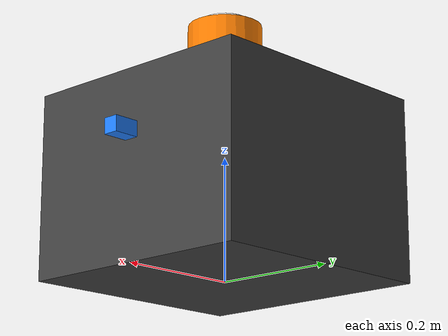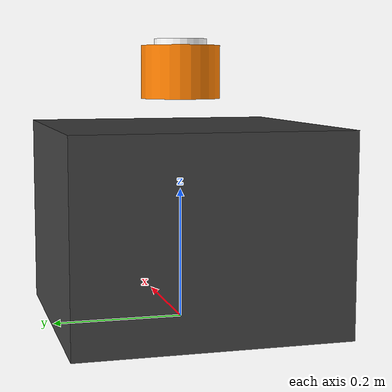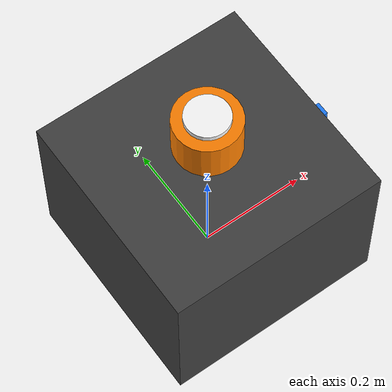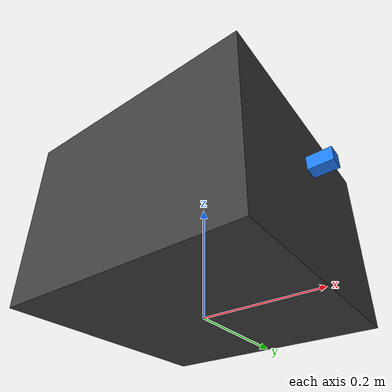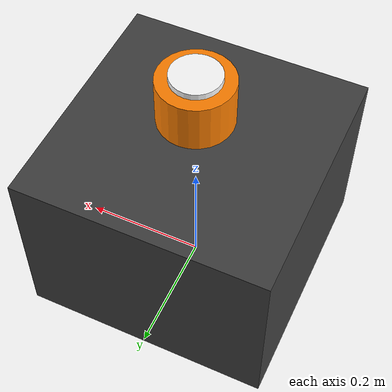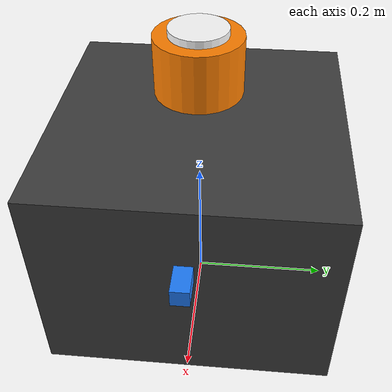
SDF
<?xml version="1.0" ?>
<sdf version='1.9'>
  <model name='diy_challenge_robot'>
    <link name='base_link'>
      <inertial>
        <pose>0 0 0 0 0 0</pose>
        <mass>8</mass>
        <inertia>
          <ixx>0.10000000000000001</ixx>
          <ixy>0</ixy>
          <ixz>0</ixz>
          <iyy>0.10000000000000001</iyy>
          <iyz>0</iyz>
          <izz>0.10000000000000001</izz>
        </inertia>
      </inertial>
      <collision name='base_link_collision'>
        <pose>0 0 0.203 0 0 0</pose>
        <geometry>
          <box>
            <size>0.61 0.406 0.406</size>
          </box>
        </geometry>
      </collision>
      <visual name='base_link_visual'>
        <pose>0 0 0.15 0 0 0</pose>
        <geometry>
          <box>
            <size>0.406 0.406 0.3</size>
          </box>
        </geometry>
        <material>
          <diffuse>0.25 0.25 0.25 1</diffuse>
          <ambient>0.25 0.25 0.25 1</ambient>
        </material>
      </visual>
      <visual name='base_link_fixed_joint_lump__camera_link_visual_1'>
        <pose>0.2 0 0.2 0 0 0</pose>
        <geometry>
          <box>
            <size>0.09 0.025 0.025</size>
          </box>
        </geometry>
        <material>
          <diffuse>0.125 0.5 1 1</diffuse>
          <ambient>0.125 0.5 1 1</ambient>
        </material>
      </visual>
      <visual name='base_link_fixed_joint_lump__gps_link_visual_2'>
        <pose>0 0 0.42 0 0 0</pose>
        <geometry>
          <cylinder>
            <length>0.02</length>
            <radius>0.040000000000000001</radius>
          </cylinder>
        </geometry>
        <material>
          <diffuse>1 1 1 1</diffuse>
          <ambient>1 1 1 1</ambient>
        </material>
      </visual>
      <visual name='base_link_fixed_joint_lump__imu_link_visual_3'>
        <pose>0 0 0.25 0 0 0</pose>
        <geometry>
          <box>
            <size>0.03 0.03 0.015</size>
          </box>
        </geometry>
        <material>
          <diffuse>0.125 1 0.25 1</diffuse>
          <ambient>0.125 1 0.25 1</ambient>
        </material>
      </visual>
      <visual name='base_link_fixed_joint_lump__lidar_link_visual_4'>
        <pose>0 0 0.38 0 0 0</pose>
        <geometry>
          <cylinder>
            <length>0.080000000000000002</length>
            <radius>0.059999999999999998</radius>
          </cylinder>
        </geometry>
        <material>
          <diffuse>1 0.5 0 1</diffuse>
          <ambient>1 0.5 0 1</ambient>
        </material>
      </visual>
    </link>
    <frame name='camera_to_optical' attached_to='camera_link'>
      <pose>0 0 0 -1.5708 0 -1.5708</pose>
    </frame>
    <frame name='camera_optical_link' attached_to='camera_to_optical'/>
    <frame name='base_to_camera' attached_to='base_link'>
      <pose>0.2 0 0.2 0 -0 0</pose>
    </frame>
    <frame name='camera_link' attached_to='base_to_camera'/>
    <frame name='base_to_gps' attached_to='base_link'>
      <pose>0 0 0.42 0 -0 0</pose>
    </frame>
    <frame name='gps_link' attached_to='base_to_gps'/>
    <frame name='base_to_imu' attached_to='base_link'>
      <pose>0 0 0.25 0 -0 0</pose>
    </frame>
    <frame name='imu_link' attached_to='base_to_imu'/>
    <frame name='base_to_lidar' attached_to='base_link'>
      <pose>0 0 0.38 0 -0 0</pose>
    </frame>
    <frame name='lidar_link' attached_to='base_to_lidar'/>
  </model>
</sdf>
